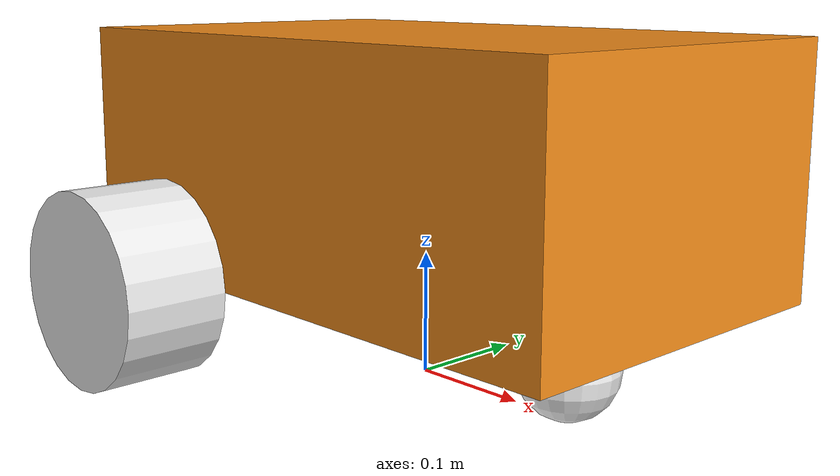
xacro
<?xml version="1.0"?>
<robot xmlns:xacro="http://www.ros.org/wiki/xacro" >

    <xacro:include filename="macros_inertial.xacro"/>
    <xacro:include filename="macros_material.xacro"/>

    <xacro:property name="chassis_length" value="0.5"/>
    <xacro:property name="chassis_width" value="0.3"/>
    <xacro:property name="chassis_height" value="0.2"/>

    <xacro:property name="track" value="${chassis_width + wheel_thickness}"/>

    <xacro:property name="wheelbase_length" value="0.3"/>
    <xacro:property name="chassis_mass" value="1.0"/>

    <xacro:property name="wheel_radius" value="0.08"/>
    <xacro:property name="wheel_thickness" value="0.085"/>
    <xacro:property name="wheel_mass" value="0.05"/>

    <xacro:property name="caster_wheel_radius" value="0.04"/>
    <xacro:property name="caster_wheel_mass" value="0.5"/>

    <xacro:property name="lidar_x" value="${wheelbase_length/2 + 0.021 + 0.038/2}"/>
    <xacro:property name="lidar_y" value="${-chassis_width/2 + 0.03 + 0.038/2}"/>
    <xacro:property name="lidar_z" value="${chassis_height+0.02}"/>

    <xacro:property name="gps_x" value="${-wheelbase_length/2 - 0.035}"/>
    <xacro:property name="gps_y" value="${-chassis_width/2 + 0.05}"/>
    <xacro:property name="gps_z" value="${chassis_height+0.10}"/>

    <xacro:property name="imu_x" value="${wheelbase_length/2 -0.115}"/>
    <xacro:property name="imu_y" value="${0.0}"/>
    <xacro:property name="imu_z" value="${chassis_height+0.01}"/>

    <xacro:property name="collision_x" value="${wheelbase_length/2 + 0.16}"/>
    <xacro:property name="collision_y" value="${0}"/>
    <xacro:property name="collision_z" value="${0.07}"/>

    <xacro:property name="camera_width" value="0.1"/>
    <xacro:property name="camera_height" value="0.065"/>
    <xacro:property name="camera_length" value="0.03"/>
    <xacro:property name="camera_mass" value="0.05"/>

    <xacro:property name="camera_x" value="${wheelbase_length/2 + 0.08 + camera_length/2}"/>
    <xacro:property name="camera_y" value="${-chassis_width/2 + 0.16}"/>
    <xacro:property name="camera_z" value="${0.078 + 0.06 + camera_height/2}"/>

    <xacro:property name="lidarAS_width" value="0.076"/>
    <xacro:property name="lidarAS_height" value="0.220"/>
    <xacro:property name="lidarAS_length" value="0.032"/>
    <xacro:property name="lidarAS_mass" value="0.05"/>

    <xacro:property name="lidarAS_x" value="${-wheelbase_length/2 + lidarAS_length/2}"/>
    <xacro:property name="lidarAS_y" value="${chassis_width/2 - 0.04}"/>
    <xacro:property name="lidarAS_z" value="${lidarAS_height/2+chassis_height}"/>
    <!-- MACRO FOR THE WHEELS -->

    <xacro:macro name="wheel" params="prefix reflect_x reflect_y">
        <xacro:property name="pose_wheel" value="0 0 0"/>
        <xacro:property name="orientation_wheel" value="0 0 ${pi/2 + reflect_y * pi/2}"/>
        <joint name="chassis_${prefix}_wheel" type="continuous">
            <parent link="chassis"/>
            <child link="${prefix}_wheel"/>
            <origin xyz="${reflect_x * wheelbase_length/2} ${reflect_y * track/2} 0" rpy="0 ${pi/2} ${pi/2}"/>
            <axis xyz="0 0 1"/>
        </joint>
        <link name="${prefix}_wheel">
            <visual>
                <geometry>
                    <cylinder radius="${wheel_radius}" length="${wheel_thickness}"/>
                </geometry>
                <origin xyz="0 0 0" rpy="${orientation_wheel}"/>
                <material name="white"/>
            </visual>
            <collision>
                <geometry>
                    <cylinder radius="${wheel_radius}" length="${wheel_thickness}"/>
                </geometry>
                <origin xyz="0 0 0" rpy="${orientation_wheel}"/>
            </collision>
            <xacro:inertial_cylinder mass="${wheel_mass}" length="${wheel_thickness}" radius="${wheel_radius}">
                <origin xyz="0 0 0" rpy="${orientation_wheel}"/>
            </xacro:inertial_cylinder>
        </link>

        <gazebo reference="${prefix}_wheel">
            <material>Gazebo/Blue</material>
        </gazebo>
    </xacro:macro>

    <!-- BASE LINK -->
    <link name="base_link"/>
    <link name="base_footprint"/>

    <!-- BASE_FOOTPRINT LINK -->
    <joint name="base_footprint_joint" type="fixed">
        <parent link="base_footprint"/>
        <child link="base_link"/>
        <origin xyz="0 0 0" rpy="0 0 0"/>
    </joint>

    <!-- CHASSIS LINK -->
    <joint name="chassis_joint" type="fixed">
        <parent link="base_link"/>
        <child link="chassis"/>
        <origin xyz="0 0 ${wheel_radius}" rpy="0 0 0"/>
    </joint>

    <link name="chassis">
        <xacro:property name="pose_chassis" value="0 0 ${chassis_height/2}"/>
        <visual>
            <origin xyz="${pose_chassis}"/>
            <geometry>
                <box size="${chassis_length} ${chassis_width} ${chassis_height}"/>
            </geometry>
            <material name="orange"/>
        </visual>
        <collision>
            <origin xyz="${pose_chassis}"/>
            <geometry>
                <box size="${chassis_length} ${chassis_width} ${chassis_height}"/>
            </geometry>
        </collision>
        <xacro:inertial_box mass="0.5" x="${chassis_length}" y="${chassis_width}" z="${chassis_height}">
            <origin xyz="${pose_chassis}" rpy="0 0 0"/>
        </xacro:inertial_box>
    </link>

    <gazebo reference="chassis">
        <material>Gazebo/Orange</material>
    </gazebo>

    <xacro:wheel prefix="rear_right" reflect_x="-1" reflect_y="1" />
    <xacro:wheel prefix="rear_left" reflect_x="-1" reflect_y="-1" />

    <!-- Yaw link -->
    <link name="caster_yaw_link">
        <inertial>
            <mass value="0.01"/>
            <inertia
                    ixx="1e-5" ixy="0" ixz="0"
                    iyy="1e-5" iyz="0"
                    izz="1e-5"/>
        </inertial>
    </link>

    <!-- Swivel -->
    <joint name="caster_yaw_joint" type="continuous">
        <parent link="chassis"/>
        <child  link="caster_yaw_link"/>
        <origin
                xyz="${wheelbase_length/2} 0 0"
                rpy="0 0 0"/>
        <axis xyz="0 0 1"/>
    </joint>

    <!-- Caster wheel -->
    <link name="caster">
        <xacro:property name="caster_pose" value="0 0 0"/>
        <visual>
            <origin xyz="${caster_pose}" rpy="0 0 0"/>
            <geometry>
                <sphere radius="${caster_wheel_radius}"/>
            </geometry>
            <material name="white"/>
        </visual>

        <collision>
            <origin xyz="${caster_pose}" rpy="0 0 0"/>
            <geometry>
                <sphere radius="${caster_wheel_radius}"/>
            </geometry>
        </collision>

        <xacro:inertial_sphere
                mass="${caster_wheel_mass}"
                radius="${caster_wheel_radius}">
            <origin xyz="${caster_pose}"/>
        </xacro:inertial_sphere>
    </link>

    <!-- Roll -->
    <joint name="caster_wheel_joint" type="continuous">
        <parent link="caster_yaw_link"/>
        <child  link="caster"/>
        <origin xyz="0 0 ${-caster_wheel_radius}" rpy="0 0 0"/>
        <axis xyz="0 1 0"/>
    </joint>

    <gazebo reference="caster">
        <mu1>0.01</mu1>
        <mu2>0.01</mu2>
    </gazebo>

</robot>
